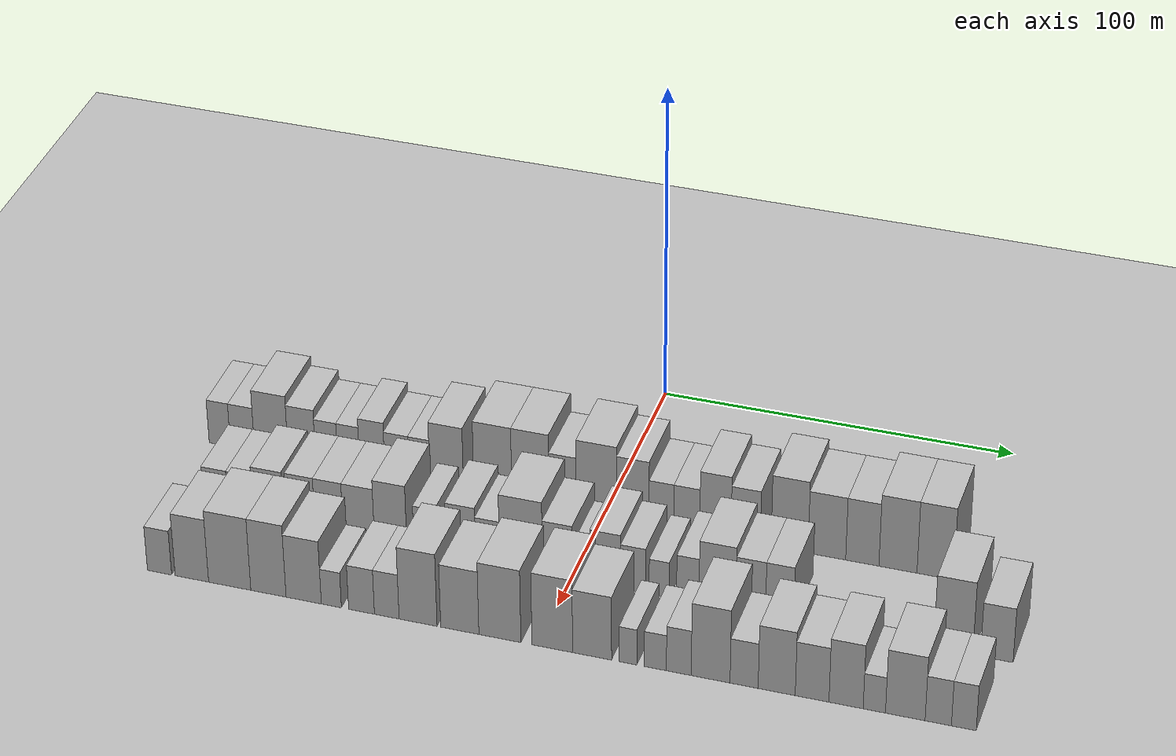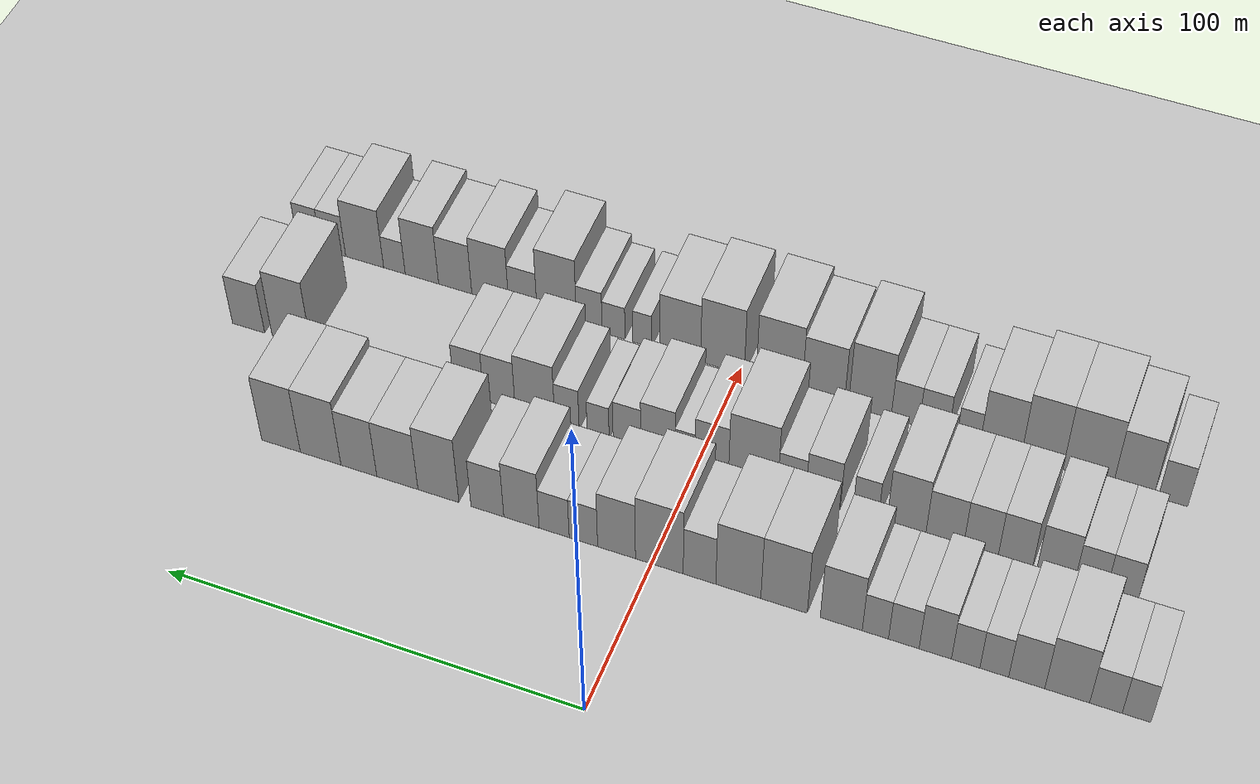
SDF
<sdf version="1.6">
 <world name="default">
  <include><name>ground_plane_1</name><uri>model://HANNAS_ground_plane</uri></include>
  <include>
   <name>ground_plane_2</name>
   <uri>model://HANNAS_ground_plane</uri>
   <pose>100 0 0  0 0 0</pose>
  </include>
  <model name="building_23">
   <static>1</static>
   <pose>50.0000 -111.0377 0 0.000000 0.000000 0.000000</pose>
   <link name="link">
    <pose>0 0 7.50 0 0 0</pose>
    <collision name="collision"><geometry><box><size>20.0000 6.3053 15.0000</size></box></geometry></collision>
    <visual name="visual">
     <cast_shadows>0</cast_shadows>
     <geometry><box><size>20.0000 6.3053 15.0000</size></box></geometry>
     <material>
      <script>
       <uri>model://HANNAS_wall/materials/scripts</uri>
       <uri>model://HANNAS_wall/materials/textures</uri>
       <name>vrc/HANNAS_wall</name>
      </script>
     </material>
    </visual>
   </link>
  </model>
  <model name="building_24">
   <static>1</static>
   <pose>50.0000 -104.3092 0 0.000000 0.000000 0.000000</pose>
   <link name="link">
    <pose>0 0 7.50 0 0 0</pose>
    <collision name="collision"><geometry><box><size>20.0000 7.1516 15.0000</size></box></geometry></collision>
    <visual name="visual">
     <cast_shadows>0</cast_shadows>
     <geometry><box><size>20.0000 7.1516 15.0000</size></box></geometry>
     <material>
      <script>
       <uri>model://HANNAS_wall/materials/scripts</uri>
       <uri>model://HANNAS_wall/materials/textures</uri>
       <name>vrc/HANNAS_wall</name>
      </script>
     </material>
    </visual>
   </link>
  </model>
  <model name="building_25">
   <static>1</static>
   <pose>50.0000 -95.7648 0 0.000000 0.000000 0.000000</pose>
   <link name="link">
    <pose>0 0 10.50 0 0 0</pose>
    <collision name="collision"><geometry><box><size>20.0000 9.9373 21.0000</size></box></geometry></collision>
    <visual name="visual">
     <cast_shadows>0</cast_shadows>
     <geometry><box><size>20.0000 9.9373 21.0000</size></box></geometry>
     <material>
      <script>
       <uri>model://HANNAS_wall/materials/scripts</uri>
       <uri>model://HANNAS_wall/materials/textures</uri>
       <name>vrc/HANNAS_wall</name>
      </script>
     </material>
    </visual>
   </link>
  </model>
  <model name="building_26">
   <static>1</static>
   <pose>50.0000 -86.7665 0 0.000000 0.000000 0.000000</pose>
   <link name="link">
    <pose>0 0 9.00 0 0 0</pose>
    <collision name="collision"><geometry><box><size>20.0000 8.0591 18.0000</size></box></geometry></collision>
    <visual name="visual">
     <cast_shadows>0</cast_shadows>
     <geometry><box><size>20.0000 8.0591 18.0000</size></box></geometry>
     <material>
      <script>
       <uri>model://HANNAS_wall/materials/scripts</uri>
       <uri>model://HANNAS_wall/materials/textures</uri>
       <name>vrc/HANNAS_wall</name>
      </script>
     </material>
    </visual>
   </link>
  </model>
  <model name="building_27">
   <static>1</static>
   <pose>50.0000 -79.5064 0 0.000000 0.000000 0.000000</pose>
   <link name="link">
    <pose>0 0 7.50 0 0 0</pose>
    <collision name="collision"><geometry><box><size>20.0000 6.4612 15.0000</size></box></geometry></collision>
    <visual name="visual">
     <cast_shadows>0</cast_shadows>
     <geometry><box><size>20.0000 6.4612 15.0000</size></box></geometry>
     <material>
      <script>
       <uri>model://HANNAS_wall/materials/scripts</uri>
       <uri>model://HANNAS_wall/materials/textures</uri>
       <name>vrc/HANNAS_wall</name>
      </script>
     </material>
    </visual>
   </link>
  </model>
  <model name="building_28">
   <static>1</static>
   <pose>50.0000 -73.0617 0 0.000000 0.000000 0.000000</pose>
   <link name="link">
    <pose>0 0 7.50 0 0 0</pose>
    <collision name="collision"><geometry><box><size>20.0000 6.4282 15.0000</size></box></geometry></collision>
    <visual name="visual">
     <cast_shadows>0</cast_shadows>
     <geometry><box><size>20.0000 6.4282 15.0000</size></box></geometry>
     <material>
      <script>
       <uri>model://HANNAS_wall/materials/scripts</uri>
       <uri>model://HANNAS_wall/materials/textures</uri>
       <name>vrc/HANNAS_wall</name>
      </script>
     </material>
    </visual>
   </link>
  </model>
  <model name="building_29">
   <static>1</static>
   <pose>50.0000 -66.1750 0 0.000000 0.000000 0.000000</pose>
   <link name="link">
    <pose>0 0 9.00 0 0 0</pose>
    <collision name="collision"><geometry><box><size>20.0000 7.3453 18.0000</size></box></geometry></collision>
    <visual name="visual">
     <cast_shadows>0</cast_shadows>
     <geometry><box><size>20.0000 7.3453 18.0000</size></box></geometry>
     <material>
      <script>
       <uri>model://HANNAS_wall/materials/scripts</uri>
       <uri>model://HANNAS_wall/materials/textures</uri>
       <name>vrc/HANNAS_wall</name>
      </script>
     </material>
    </visual>
   </link>
  </model>
  <model name="building_30">
   <static>1</static>
   <pose>50.0000 -59.0148 0 0.000000 0.000000 0.000000</pose>
   <link name="link">
    <pose>0 0 7.50 0 0 0</pose>
    <collision name="collision"><geometry><box><size>20.0000 6.9750 15.0000</size></box></geometry></collision>
    <visual name="visual">
     <cast_shadows>0</cast_shadows>
     <geometry><box><size>20.0000 6.9750 15.0000</size></box></geometry>
     <material>
      <script>
       <uri>model://HANNAS_wall/materials/scripts</uri>
       <uri>model://HANNAS_wall/materials/textures</uri>
       <name>vrc/HANNAS_wall</name>
      </script>
     </material>
    </visual>
   </link>
  </model>
  <model name="building_31">
   <static>1</static>
   <pose>50.0000 -52.5068 0 0.000000 0.000000 0.000000</pose>
   <link name="link">
    <pose>0 0 7.50 0 0 0</pose>
    <collision name="collision"><geometry><box><size>20.0000 6.0411 15.0000</size></box></geometry></collision>
    <visual name="visual">
     <cast_shadows>0</cast_shadows>
     <geometry><box><size>20.0000 6.0411 15.0000</size></box></geometry>
     <material>
      <script>
       <uri>model://HANNAS_wall/materials/scripts</uri>
       <uri>model://HANNAS_wall/materials/textures</uri>
       <name>vrc/HANNAS_wall</name>
      </script>
     </material>
    </visual>
   </link>
  </model>
  <model name="building_32">
   <static>1</static>
   <pose>50.0000 -44.6424 0 0.000000 0.000000 0.000000</pose>
   <link name="link">
    <pose>0 0 10.50 0 0 0</pose>
    <collision name="collision"><geometry><box><size>20.0000 9.6876 21.0000</size></box></geometry></collision>
    <visual name="visual">
     <cast_shadows>0</cast_shadows>
     <geometry><box><size>20.0000 9.6876 21.0000</size></box></geometry>
     <material>
      <script>
       <uri>model://HANNAS_wall/materials/scripts</uri>
       <uri>model://HANNAS_wall/materials/textures</uri>
       <name>vrc/HANNAS_wall</name>
      </script>
     </material>
    </visual>
   </link>
  </model>
  <model name="building_33">
   <static>1</static>
   <pose>50.0000 -31.3701 0 0.000000 0.000000 0.000000</pose>
   <link name="link">
    <pose>0 0 12.00 0 0 0</pose>
    <collision name="collision"><geometry><box><size>20.0000 10.8570 24.0000</size></box></geometry></collision>
    <visual name="visual">
     <cast_shadows>0</cast_shadows>
     <geometry><box><size>20.0000 10.8570 24.0000</size></box></geometry>
     <material>
      <script>
       <uri>model://HANNAS_wall/materials/scripts</uri>
       <uri>model://HANNAS_wall/materials/textures</uri>
       <name>vrc/HANNAS_wall</name>
      </script>
     </material>
    </visual>
   </link>
  </model>
  <model name="building_34">
   <static>1</static>
   <pose>50.0000 -20.6440 0 0.000000 0.000000 0.000000</pose>
   <link name="link">
    <pose>0 0 12.00 0 0 0</pose>
    <collision name="collision"><geometry><box><size>20.0000 10.5951 24.0000</size></box></geometry></collision>
    <visual name="visual">
     <cast_shadows>0</cast_shadows>
     <geometry><box><size>20.0000 10.5951 24.0000</size></box></geometry>
     <material>
      <script>
       <uri>model://HANNAS_wall/materials/scripts</uri>
       <uri>model://HANNAS_wall/materials/textures</uri>
       <name>vrc/HANNAS_wall</name>
      </script>
     </material>
    </visual>
   </link>
  </model>
  <model name="building_35">
   <static>1</static>
   <pose>50.0000 -11.4797 0 0.000000 0.000000 0.000000</pose>
   <link name="link">
    <pose>0 0 9.00 0 0 0</pose>
    <collision name="collision"><geometry><box><size>20.0000 7.7335 18.0000</size></box></geometry></collision>
    <visual name="visual">
     <cast_shadows>0</cast_shadows>
     <geometry><box><size>20.0000 7.7335 18.0000</size></box></geometry>
     <material>
      <script>
       <uri>model://HANNAS_wall/materials/scripts</uri>
       <uri>model://HANNAS_wall/materials/textures</uri>
       <name>vrc/HANNAS_wall</name>
      </script>
     </material>
    </visual>
   </link>
  </model>
  <model name="building_36">
   <static>1</static>
   <pose>50.0000 -1.9124 0 0.000000 0.000000 0.000000</pose>
   <link name="link">
    <pose>0 0 12.00 0 0 0</pose>
    <collision name="collision"><geometry><box><size>20.0000 11.4013 24.0000</size></box></geometry></collision>
    <visual name="visual">
     <cast_shadows>0</cast_shadows>
     <geometry><box><size>20.0000 11.4013 24.0000</size></box></geometry>
     <material>
      <script>
       <uri>model://HANNAS_wall/materials/scripts</uri>
       <uri>model://HANNAS_wall/materials/textures</uri>
       <name>vrc/HANNAS_wall</name>
      </script>
     </material>
    </visual>
   </link>
  </model>
  <model name="building_37">
   <static>1</static>
   <pose>50.0000 8.3407 0 0.000000 0.000000 0.000000</pose>
   <link name="link">
    <pose>0 0 10.50 0 0 0</pose>
    <collision name="collision"><geometry><box><size>20.0000 9.1049 21.0000</size></box></geometry></collision>
    <visual name="visual">
     <cast_shadows>0</cast_shadows>
     <geometry><box><size>20.0000 9.1049 21.0000</size></box></geometry>
     <material>
      <script>
       <uri>model://HANNAS_wall/materials/scripts</uri>
       <uri>model://HANNAS_wall/materials/textures</uri>
       <name>vrc/HANNAS_wall</name>
      </script>
     </material>
    </visual>
   </link>
  </model>
  <model name="building_38">
   <static>1</static>
   <pose>50.0000 16.3388 0 0.000000 0.000000 0.000000</pose>
   <link name="link">
    <pose>0 0 7.50 0 0 0</pose>
    <collision name="collision"><geometry><box><size>20.0000 6.8914 15.0000</size></box></geometry></collision>
    <visual name="visual">
     <cast_shadows>0</cast_shadows>
     <geometry><box><size>20.0000 6.8914 15.0000</size></box></geometry>
     <material>
      <script>
       <uri>model://HANNAS_wall/materials/scripts</uri>
       <uri>model://HANNAS_wall/materials/textures</uri>
       <name>vrc/HANNAS_wall</name>
      </script>
     </material>
    </visual>
   </link>
  </model>
  <model name="building_39">
   <static>1</static>
   <pose>50.0000 23.4377 0 0.000000 0.000000 0.000000</pose>
   <link name="link">
    <pose>0 0 7.50 0 0 0</pose>
    <collision name="collision"><geometry><box><size>20.0000 7.3063 15.0000</size></box></geometry></collision>
    <visual name="visual">
     <cast_shadows>0</cast_shadows>
     <geometry><box><size>20.0000 7.3063 15.0000</size></box></geometry>
     <material>
      <script>
       <uri>model://HANNAS_wall/materials/scripts</uri>
       <uri>model://HANNAS_wall/materials/textures</uri>
       <name>vrc/HANNAS_wall</name>
      </script>
     </material>
    </visual>
   </link>
  </model>
  <model name="building_40">
   <static>1</static>
   <pose>50.0000 31.4318 0 0.000000 0.000000 0.000000</pose>
   <link name="link">
    <pose>0 0 10.50 0 0 0</pose>
    <collision name="collision"><geometry><box><size>20.0000 8.6821 21.0000</size></box></geometry></collision>
    <visual name="visual">
     <cast_shadows>0</cast_shadows>
     <geometry><box><size>20.0000 8.6821 21.0000</size></box></geometry>
     <material>
      <script>
       <uri>model://HANNAS_wall/materials/scripts</uri>
       <uri>model://HANNAS_wall/materials/textures</uri>
       <name>vrc/HANNAS_wall</name>
      </script>
     </material>
    </visual>
   </link>
  </model>
  <model name="building_41">
   <static>1</static>
   <pose>50.0000 39.8269 0 0.000000 0.000000 0.000000</pose>
   <link name="link">
    <pose>0 0 9.00 0 0 0</pose>
    <collision name="collision"><geometry><box><size>20.0000 8.1081 18.0000</size></box></geometry></collision>
    <visual name="visual">
     <cast_shadows>0</cast_shadows>
     <geometry><box><size>20.0000 8.1081 18.0000</size></box></geometry>
     <material>
      <script>
       <uri>model://HANNAS_wall/materials/scripts</uri>
       <uri>model://HANNAS_wall/materials/textures</uri>
       <name>vrc/HANNAS_wall</name>
      </script>
     </material>
    </visual>
   </link>
  </model>
  <model name="building_42">
   <static>1</static>
   <pose>50.0000 51.9822 0 0.000000 0.000000 0.000000</pose>
   <link name="link">
    <pose>0 0 12.00 0 0 0</pose>
    <collision name="collision"><geometry><box><size>20.0000 10.2024 24.0000</size></box></geometry></collision>
    <visual name="visual">
     <cast_shadows>0</cast_shadows>
     <geometry><box><size>20.0000 10.2024 24.0000</size></box></geometry>
     <material>
      <script>
       <uri>model://HANNAS_wall/materials/scripts</uri>
       <uri>model://HANNAS_wall/materials/textures</uri>
       <name>vrc/HANNAS_wall</name>
      </script>
     </material>
    </visual>
   </link>
  </model>
  <model name="building_43">
   <static>1</static>
   <pose>50.0000 62.2492 0 0.000000 0.000000 0.000000</pose>
   <link name="link">
    <pose>0 0 10.50 0 0 0</pose>
    <collision name="collision"><geometry><box><size>20.0000 10.3316 21.0000</size></box></geometry></collision>
    <visual name="visual">
     <cast_shadows>0</cast_shadows>
     <geometry><box><size>20.0000 10.3316 21.0000</size></box></geometry>
     <material>
      <script>
       <uri>model://HANNAS_wall/materials/scripts</uri>
       <uri>model://HANNAS_wall/materials/textures</uri>
       <name>vrc/HANNAS_wall</name>
      </script>
     </material>
    </visual>
   </link>
  </model>
  <model name="building_44">
   <static>1</static>
   <pose>50.0000 71.9521 0 0.000000 0.000000 0.000000</pose>
   <link name="link">
    <pose>0 0 10.50 0 0 0</pose>
    <collision name="collision"><geometry><box><size>20.0000 9.0741 21.0000</size></box></geometry></collision>
    <visual name="visual">
     <cast_shadows>0</cast_shadows>
     <geometry><box><size>20.0000 9.0741 21.0000</size></box></geometry>
     <material>
      <script>
       <uri>model://HANNAS_wall/materials/scripts</uri>
       <uri>model://HANNAS_wall/materials/textures</uri>
       <name>vrc/HANNAS_wall</name>
      </script>
     </material>
    </visual>
   </link>
  </model>
  <model name="building_45">
   <static>1</static>
   <pose>50.0000 81.6699 0 0.000000 0.000000 0.000000</pose>
   <link name="link">
    <pose>0 0 12.00 0 0 0</pose>
    <collision name="collision"><geometry><box><size>20.0000 10.3615 24.0000</size></box></geometry></collision>
    <visual name="visual">
     <cast_shadows>0</cast_shadows>
     <geometry><box><size>20.0000 10.3615 24.0000</size></box></geometry>
     <material>
      <script>
       <uri>model://HANNAS_wall/materials/scripts</uri>
       <uri>model://HANNAS_wall/materials/textures</uri>
       <name>vrc/HANNAS_wall</name>
      </script>
     </material>
    </visual>
   </link>
  </model>
  <model name="building_46">
   <static>1</static>
   <pose>50.0000 91.8081 0 0.000000 0.000000 0.000000</pose>
   <link name="link">
    <pose>0 0 12.00 0 0 0</pose>
    <collision name="collision"><geometry><box><size>20.0000 9.9149 24.0000</size></box></geometry></collision>
    <visual name="visual">
     <cast_shadows>0</cast_shadows>
     <geometry><box><size>20.0000 9.9149 24.0000</size></box></geometry>
     <material>
      <script>
       <uri>model://HANNAS_wall/materials/scripts</uri>
       <uri>model://HANNAS_wall/materials/textures</uri>
       <name>vrc/HANNAS_wall</name>
      </script>
     </material>
    </visual>
   </link>
  </model>
  <model name="building_96">
   <static>1</static>
   <pose>79.0000 -100.4707 0 0.000000 0.000000 0.000000</pose>
   <link name="link">
    <pose>0 0 7.50 0 0 0</pose>
    <collision name="collision"><geometry><box><size>20.0000 7.1314 15.0000</size></box></geometry></collision>
    <visual name="visual">
     <cast_shadows>0</cast_shadows>
     <geometry><box><size>20.0000 7.1314 15.0000</size></box></geometry>
     <material>
      <script>
       <uri>model://HANNAS_wall/materials/scripts</uri>
       <uri>model://HANNAS_wall/materials/textures</uri>
       <name>vrc/HANNAS_wall</name>
      </script>
     </material>
    </visual>
   </link>
  </model>
  <model name="building_97">
   <static>1</static>
   <pose>79.0000 -93.3090 0 0.000000 0.000000 0.000000</pose>
   <link name="link">
    <pose>0 0 7.50 0 0 0</pose>
    <collision name="collision"><geometry><box><size>20.0000 7.1920 15.0000</size></box></geometry></collision>
    <visual name="visual">
     <cast_shadows>0</cast_shadows>
     <geometry><box><size>20.0000 7.1920 15.0000</size></box></geometry>
     <material>
      <script>
       <uri>model://HANNAS_wall/materials/scripts</uri>
       <uri>model://HANNAS_wall/materials/textures</uri>
       <name>vrc/HANNAS_wall</name>
      </script>
     </material>
    </visual>
   </link>
  </model>
  <model name="building_98">
   <static>1</static>
   <pose>79.0000 -85.3346 0 0.000000 0.000000 0.000000</pose>
   <link name="link">
    <pose>0 0 9.00 0 0 0</pose>
    <collision name="collision"><geometry><box><size>20.0000 8.7568 18.0000</size></box></geometry></collision>
    <visual name="visual">
     <cast_shadows>0</cast_shadows>
     <geometry><box><size>20.0000 8.7568 18.0000</size></box></geometry>
     <material>
      <script>
       <uri>model://HANNAS_wall/materials/scripts</uri>
       <uri>model://HANNAS_wall/materials/textures</uri>
       <name>vrc/HANNAS_wall</name>
      </script>
     </material>
    </visual>
   </link>
  </model>
  <model name="building_99">
   <static>1</static>
   <pose>79.0000 -75.9559 0 0.000000 0.000000 0.000000</pose>
   <link name="link">
    <pose>0 0 9.00 0 0 0</pose>
    <collision name="collision"><geometry><box><size>20.0000 8.0005 18.0000</size></box></geometry></collision>
    <visual name="visual">
     <cast_shadows>0</cast_shadows>
     <geometry><box><size>20.0000 8.0005 18.0000</size></box></geometry>
     <material>
      <script>
       <uri>model://HANNAS_wall/materials/scripts</uri>
       <uri>model://HANNAS_wall/materials/textures</uri>
       <name>vrc/HANNAS_wall</name>
      </script>
     </material>
    </visual>
   </link>
  </model>
  <model name="building_100">
   <static>1</static>
   <pose>79.0000 -67.9354 0 0.000000 0.000000 0.000000</pose>
   <link name="link">
    <pose>0 0 9.00 0 0 0</pose>
    <collision name="collision"><geometry><box><size>20.0000 8.0405 18.0000</size></box></geometry></collision>
    <visual name="visual">
     <cast_shadows>0</cast_shadows>
     <geometry><box><size>20.0000 8.0405 18.0000</size></box></geometry>
     <material>
      <script>
       <uri>model://HANNAS_wall/materials/scripts</uri>
       <uri>model://HANNAS_wall/materials/textures</uri>
       <name>vrc/HANNAS_wall</name>
      </script>
     </material>
    </visual>
   </link>
  </model>
  <model name="building_101">
   <static>1</static>
   <pose>79.0000 -59.4832 0 0.000000 0.000000 0.000000</pose>
   <link name="link">
    <pose>0 0 9.00 0 0 0</pose>
    <collision name="collision"><geometry><box><size>20.0000 8.8640 18.0000</size></box></geometry></collision>
    <visual name="visual">
     <cast_shadows>0</cast_shadows>
     <geometry><box><size>20.0000 8.8640 18.0000</size></box></geometry>
     <material>
      <script>
       <uri>model://HANNAS_wall/materials/scripts</uri>
       <uri>model://HANNAS_wall/materials/textures</uri>
       <name>vrc/HANNAS_wall</name>
      </script>
     </material>
    </visual>
   </link>
  </model>
  <model name="building_102">
   <static>1</static>
   <pose>79.0000 -50.4524 0 0.000000 0.000000 0.000000</pose>
   <link name="link">
    <pose>0 0 10.50 0 0 0</pose>
    <collision name="collision"><geometry><box><size>20.0000 9.1976 21.0000</size></box></geometry></collision>
    <visual name="visual">
     <cast_shadows>0</cast_shadows>
     <geometry><box><size>20.0000 9.1976 21.0000</size></box></geometry>
     <material>
      <script>
       <uri>model://HANNAS_wall/materials/scripts</uri>
       <uri>model://HANNAS_wall/materials/textures</uri>
       <name>vrc/HANNAS_wall</name>
      </script>
     </material>
    </visual>
   </link>
  </model>
  <model name="building_103">
   <static>1</static>
   <pose>79.0000 -40.8290 0 0.000000 0.000000 0.000000</pose>
   <link name="link">
    <pose>0 0 7.50 0 0 0</pose>
    <collision name="collision"><geometry><box><size>20.0000 6.0492 15.0000</size></box></geometry></collision>
    <visual name="visual">
     <cast_shadows>0</cast_shadows>
     <geometry><box><size>20.0000 6.0492 15.0000</size></box></geometry>
     <material>
      <script>
       <uri>model://HANNAS_wall/materials/scripts</uri>
       <uri>model://HANNAS_wall/materials/textures</uri>
       <name>vrc/HANNAS_wall</name>
      </script>
     </material>
    </visual>
   </link>
  </model>
  <model name="building_104">
   <static>1</static>
   <pose>79.0000 -30.6722 0 0.000000 0.000000 0.000000</pose>
   <link name="link">
    <pose>0 0 9.00 0 0 0</pose>
    <collision name="collision"><geometry><box><size>20.0000 8.2644 18.0000</size></box></geometry></collision>
    <visual name="visual">
     <cast_shadows>0</cast_shadows>
     <geometry><box><size>20.0000 8.2644 18.0000</size></box></geometry>
     <material>
      <script>
       <uri>model://HANNAS_wall/materials/scripts</uri>
       <uri>model://HANNAS_wall/materials/textures</uri>
       <name>vrc/HANNAS_wall</name>
      </script>
     </material>
    </visual>
   </link>
  </model>
  <model name="building_105">
   <static>1</static>
   <pose>79.0000 -23.1634 0 0.000000 0.000000 0.000000</pose>
   <link name="link">
    <pose>0 0 7.50 0 0 0</pose>
    <collision name="collision"><geometry><box><size>20.0000 6.7531 15.0000</size></box></geometry></collision>
    <visual name="visual">
     <cast_shadows>0</cast_shadows>
     <geometry><box><size>20.0000 6.7531 15.0000</size></box></geometry>
     <material>
      <script>
       <uri>model://HANNAS_wall/materials/scripts</uri>
       <uri>model://HANNAS_wall/materials/textures</uri>
       <name>vrc/HANNAS_wall</name>
      </script>
     </material>
    </visual>
   </link>
  </model>
  <model name="building_106">
   <static>1</static>
   <pose>79.0000 -13.8226 0 0.000000 0.000000 0.000000</pose>
   <link name="link">
    <pose>0 0 12.00 0 0 0</pose>
    <collision name="collision"><geometry><box><size>20.0000 11.9286 24.0000</size></box></geometry></collision>
    <visual name="visual">
     <cast_shadows>0</cast_shadows>
     <geometry><box><size>20.0000 11.9286 24.0000</size></box></geometry>
     <material>
      <script>
       <uri>model://HANNAS_wall/materials/scripts</uri>
       <uri>model://HANNAS_wall/materials/textures</uri>
       <name>vrc/HANNAS_wall</name>
      </script>
     </material>
    </visual>
   </link>
  </model>
  <model name="building_107">
   <static>1</static>
   <pose>79.0000 -3.7254 0 0.000000 0.000000 0.000000</pose>
   <link name="link">
    <pose>0 0 9.00 0 0 0</pose>
    <collision name="collision"><geometry><box><size>20.0000 8.2656 18.0000</size></box></geometry></collision>
    <visual name="visual">
     <cast_shadows>0</cast_shadows>
     <geometry><box><size>20.0000 8.2656 18.0000</size></box></geometry>
     <material>
      <script>
       <uri>model://HANNAS_wall/materials/scripts</uri>
       <uri>model://HANNAS_wall/materials/textures</uri>
       <name>vrc/HANNAS_wall</name>
      </script>
     </material>
    </visual>
   </link>
  </model>
  <model name="building_108">
   <static>1</static>
   <pose>79.0000 2.8357 0 0.000000 0.000000 0.000000</pose>
   <link name="link">
    <pose>0 0 6.00 0 0 0</pose>
    <collision name="collision"><geometry><box><size>20.0000 4.8567 12.0000</size></box></geometry></collision>
    <visual name="visual">
     <cast_shadows>0</cast_shadows>
     <geometry><box><size>20.0000 4.8567 12.0000</size></box></geometry>
     <material>
      <script>
       <uri>model://HANNAS_wall/materials/scripts</uri>
       <uri>model://HANNAS_wall/materials/textures</uri>
       <name>vrc/HANNAS_wall</name>
      </script>
     </material>
    </visual>
   </link>
  </model>
  <model name="building_109">
   <static>1</static>
   <pose>79.0000 9.4950 0 0.000000 0.000000 0.000000</pose>
   <link name="link">
    <pose>0 0 9.00 0 0 0</pose>
    <collision name="collision"><geometry><box><size>20.0000 8.4619 18.0000</size></box></geometry></collision>
    <visual name="visual">
     <cast_shadows>0</cast_shadows>
     <geometry><box><size>20.0000 8.4619 18.0000</size></box></geometry>
     <material>
      <script>
       <uri>model://HANNAS_wall/materials/scripts</uri>
       <uri>model://HANNAS_wall/materials/textures</uri>
       <name>vrc/HANNAS_wall</name>
      </script>
     </material>
    </visual>
   </link>
  </model>
  <model name="building_110">
   <static>1</static>
   <pose>79.0000 17.1484 0 0.000000 0.000000 0.000000</pose>
   <link name="link">
    <pose>0 0 7.50 0 0 0</pose>
    <collision name="collision"><geometry><box><size>20.0000 6.8449 15.0000</size></box></geometry></collision>
    <visual name="visual">
     <cast_shadows>0</cast_shadows>
     <geometry><box><size>20.0000 6.8449 15.0000</size></box></geometry>
     <material>
      <script>
       <uri>model://HANNAS_wall/materials/scripts</uri>
       <uri>model://HANNAS_wall/materials/textures</uri>
       <name>vrc/HANNAS_wall</name>
      </script>
     </material>
    </visual>
   </link>
  </model>
  <model name="building_111">
   <static>1</static>
   <pose>79.0000 24.3176 0 0.000000 0.000000 0.000000</pose>
   <link name="link">
    <pose>0 0 6.00 0 0 0</pose>
    <collision name="collision"><geometry><box><size>20.0000 5.4935 12.0000</size></box></geometry></collision>
    <visual name="visual">
     <cast_shadows>0</cast_shadows>
     <geometry><box><size>20.0000 5.4935 12.0000</size></box></geometry>
     <material>
      <script>
       <uri>model://HANNAS_wall/materials/scripts</uri>
       <uri>model://HANNAS_wall/materials/textures</uri>
       <name>vrc/HANNAS_wall</name>
      </script>
     </material>
    </visual>
   </link>
  </model>
  <model name="building_112">
   <static>1</static>
   <pose>79.0000 32.1249 0 0.000000 0.000000 0.000000</pose>
   <link name="link">
    <pose>0 0 7.50 0 0 0</pose>
    <collision name="collision"><geometry><box><size>20.0000 6.1211 15.0000</size></box></geometry></collision>
    <visual name="visual">
     <cast_shadows>0</cast_shadows>
     <geometry><box><size>20.0000 6.1211 15.0000</size></box></geometry>
     <material>
      <script>
       <uri>model://HANNAS_wall/materials/scripts</uri>
       <uri>model://HANNAS_wall/materials/textures</uri>
       <name>vrc/HANNAS_wall</name>
      </script>
     </material>
    </visual>
   </link>
  </model>
  <model name="building_113">
   <static>1</static>
   <pose>79.0000 40.1862 0 0.000000 0.000000 0.000000</pose>
   <link name="link">
    <pose>0 0 10.50 0 0 0</pose>
    <collision name="collision"><geometry><box><size>20.0000 10.0015 21.0000</size></box></geometry></collision>
    <visual name="visual">
     <cast_shadows>0</cast_shadows>
     <geometry><box><size>20.0000 10.0015 21.0000</size></box></geometry>
     <material>
      <script>
       <uri>model://HANNAS_wall/materials/scripts</uri>
       <uri>model://HANNAS_wall/materials/textures</uri>
       <name>vrc/HANNAS_wall</name>
      </script>
     </material>
    </visual>
   </link>
  </model>
  <model name="building_114">
   <static>1</static>
   <pose>79.0000 49.1955 0 0.000000 0.000000 0.000000</pose>
   <link name="link">
    <pose>0 0 9.00 0 0 0</pose>
    <collision name="collision"><geometry><box><size>20.0000 8.0169 18.0000</size></box></geometry></collision>
    <visual name="visual">
     <cast_shadows>0</cast_shadows>
     <geometry><box><size>20.0000 8.0169 18.0000</size></box></geometry>
     <material>
      <script>
       <uri>model://HANNAS_wall/materials/scripts</uri>
       <uri>model://HANNAS_wall/materials/textures</uri>
       <name>vrc/HANNAS_wall</name>
      </script>
     </material>
    </visual>
   </link>
  </model>
  <model name="building_115">
   <static>1</static>
   <pose>79.0000 56.9932 0 0.000000 0.000000 0.000000</pose>
   <link name="link">
    <pose>0 0 9.00 0 0 0</pose>
    <collision name="collision"><geometry><box><size>20.0000 7.5786 18.0000</size></box></geometry></collision>
    <visual name="visual">
     <cast_shadows>0</cast_shadows>
     <geometry><box><size>20.0000 7.5786 18.0000</size></box></geometry>
     <material>
      <script>
       <uri>model://HANNAS_wall/materials/scripts</uri>
       <uri>model://HANNAS_wall/materials/textures</uri>
       <name>vrc/HANNAS_wall</name>
      </script>
     </material>
    </visual>
   </link>
  </model>
  <model name="building_116">
   <static>1</static>
   <pose>79.0000 103.2891 0 0.000000 0.000000 0.000000</pose>
   <link name="link">
    <pose>0 0 12.00 0 0 0</pose>
    <collision name="collision"><geometry><box><size>20.0000 10.3377 24.0000</size></box></geometry></collision>
    <visual name="visual">
     <cast_shadows>0</cast_shadows>
     <geometry><box><size>20.0000 10.3377 24.0000</size></box></geometry>
     <material>
      <script>
       <uri>model://HANNAS_wall/materials/scripts</uri>
       <uri>model://HANNAS_wall/materials/textures</uri>
       <name>vrc/HANNAS_wall</name>
      </script>
     </material>
    </visual>
   </link>
  </model>
  <model name="building_117">
   <static>1</static>
   <pose>79.0000 114.7516 0 0.000000 0.000000 0.000000</pose>
   <link name="link">
    <pose>0 0 9.00 0 0 0</pose>
    <collision name="collision"><geometry><box><size>20.0000 8.5872 18.0000</size></box></geometry></collision>
    <visual name="visual">
     <cast_shadows>0</cast_shadows>
     <geometry><box><size>20.0000 8.5872 18.0000</size></box></geometry>
     <material>
      <script>
       <uri>model://HANNAS_wall/materials/scripts</uri>
       <uri>model://HANNAS_wall/materials/textures</uri>
       <name>vrc/HANNAS_wall</name>
      </script>
     </material>
    </visual>
   </link>
  </model>
  <model name="building_164">
   <static>1</static>
   <pose>108.0000 -104.9555 0 0.000000 0.000000 0.000000</pose>
   <link name="link">
    <pose>0 0 7.50 0 0 0</pose>
    <collision name="collision"><geometry><box><size>20.0000 6.8877 15.0000</size></box></geometry></collision>
    <visual name="visual">
     <cast_shadows>0</cast_shadows>
     <geometry><box><size>20.0000 6.8877 15.0000</size></box></geometry>
     <material>
      <script>
       <uri>model://HANNAS_wall/materials/scripts</uri>
       <uri>model://HANNAS_wall/materials/textures</uri>
       <name>vrc/HANNAS_wall</name>
      </script>
     </material>
    </visual>
   </link>
  </model>
  <model name="building_165">
   <static>1</static>
   <pose>108.0000 -95.7721 0 0.000000 0.000000 0.000000</pose>
   <link name="link">
    <pose>0 0 10.50 0 0 0</pose>
    <collision name="collision"><geometry><box><size>20.0000 9.4792 21.0000</size></box></geometry></collision>
    <visual name="visual">
     <cast_shadows>0</cast_shadows>
     <geometry><box><size>20.0000 9.4792 21.0000</size></box></geometry>
     <material>
      <script>
       <uri>model://HANNAS_wall/materials/scripts</uri>
       <uri>model://HANNAS_wall/materials/textures</uri>
       <name>vrc/HANNAS_wall</name>
      </script>
     </material>
    </visual>
   </link>
  </model>
  <model name="building_166">
   <static>1</static>
   <pose>108.0000 -85.0687 0 0.000000 0.000000 0.000000</pose>
   <link name="link">
    <pose>0 0 12.00 0 0 0</pose>
    <collision name="collision"><geometry><box><size>20.0000 11.9275 24.0000</size></box></geometry></collision>
    <visual name="visual">
     <cast_shadows>0</cast_shadows>
     <geometry><box><size>20.0000 11.9275 24.0000</size></box></geometry>
     <material>
      <script>
       <uri>model://HANNAS_wall/materials/scripts</uri>
       <uri>model://HANNAS_wall/materials/textures</uri>
       <name>vrc/HANNAS_wall</name>
      </script>
     </material>
    </visual>
   </link>
  </model>
  <model name="building_167">
   <static>1</static>
   <pose>108.0000 -74.1536 0 0.000000 0.000000 0.000000</pose>
   <link name="link">
    <pose>0 0 12.00 0 0 0</pose>
    <collision name="collision"><geometry><box><size>20.0000 9.9028 24.0000</size></box></geometry></collision>
    <visual name="visual">
     <cast_shadows>0</cast_shadows>
     <geometry><box><size>20.0000 9.9028 24.0000</size></box></geometry>
     <material>
      <script>
       <uri>model://HANNAS_wall/materials/scripts</uri>
       <uri>model://HANNAS_wall/materials/textures</uri>
       <name>vrc/HANNAS_wall</name>
      </script>
     </material>
    </visual>
   </link>
  </model>
  <model name="building_168">
   <static>1</static>
   <pose>108.0000 -64.2706 0 0.000000 0.000000 0.000000</pose>
   <link name="link">
    <pose>0 0 10.50 0 0 0</pose>
    <collision name="collision"><geometry><box><size>20.0000 9.8631 21.0000</size></box></geometry></collision>
    <visual name="visual">
     <cast_shadows>0</cast_shadows>
     <geometry><box><size>20.0000 9.8631 21.0000</size></box></geometry>
     <material>
      <script>
       <uri>model://HANNAS_wall/materials/scripts</uri>
       <uri>model://HANNAS_wall/materials/textures</uri>
       <name>vrc/HANNAS_wall</name>
      </script>
     </material>
    </visual>
   </link>
  </model>
  <model name="building_169">
   <static>1</static>
   <pose>108.0000 -56.5410 0 0.000000 0.000000 0.000000</pose>
   <link name="link">
    <pose>0 0 6.00 0 0 0</pose>
    <collision name="collision"><geometry><box><size>20.0000 5.5962 12.0000</size></box></geometry></collision>
    <visual name="visual">
     <cast_shadows>0</cast_shadows>
     <geometry><box><size>20.0000 5.5962 12.0000</size></box></geometry>
     <material>
      <script>
       <uri>model://HANNAS_wall/materials/scripts</uri>
       <uri>model://HANNAS_wall/materials/textures</uri>
       <name>vrc/HANNAS_wall</name>
      </script>
     </material>
    </visual>
   </link>
  </model>
  <model name="building_170">
   <static>1</static>
   <pose>108.0000 -48.1608 0 0.000000 0.000000 0.000000</pose>
   <link name="link">
    <pose>0 0 7.50 0 0 0</pose>
    <collision name="collision"><geometry><box><size>20.0000 7.1640 15.0000</size></box></geometry></collision>
    <visual name="visual">
     <cast_shadows>0</cast_shadows>
     <geometry><box><size>20.0000 7.1640 15.0000</size></box></geometry>
     <material>
      <script>
       <uri>model://HANNAS_wall/materials/scripts</uri>
       <uri>model://HANNAS_wall/materials/textures</uri>
       <name>vrc/HANNAS_wall</name>
      </script>
     </material>
    </visual>
   </link>
  </model>
  <model name="building_171">
   <static>1</static>
   <pose>108.0000 -41.1626 0 0.000000 0.000000 0.000000</pose>
   <link name="link">
    <pose>0 0 7.50 0 0 0</pose>
    <collision name="collision"><geometry><box><size>20.0000 6.8325 15.0000</size></box></geometry></collision>
    <visual name="visual">
     <cast_shadows>0</cast_shadows>
     <geometry><box><size>20.0000 6.8325 15.0000</size></box></geometry>
     <material>
      <script>
       <uri>model://HANNAS_wall/materials/scripts</uri>
       <uri>model://HANNAS_wall/materials/textures</uri>
       <name>vrc/HANNAS_wall</name>
      </script>
     </material>
    </visual>
   </link>
  </model>
  <model name="building_172">
   <static>1</static>
   <pose>108.0000 -32.5141 0 0.000000 0.000000 0.000000</pose>
   <link name="link">
    <pose>0 0 12.00 0 0 0</pose>
    <collision name="collision"><geometry><box><size>20.0000 10.4645 24.0000</size></box></geometry></collision>
    <visual name="visual">
     <cast_shadows>0</cast_shadows>
     <geometry><box><size>20.0000 10.4645 24.0000</size></box></geometry>
     <material>
      <script>
       <uri>model://HANNAS_wall/materials/scripts</uri>
       <uri>model://HANNAS_wall/materials/textures</uri>
       <name>vrc/HANNAS_wall</name>
      </script>
     </material>
    </visual>
   </link>
  </model>
  <model name="building_173">
   <static>1</static>
   <pose>108.0000 -21.0524 0 0.000000 0.000000 0.000000</pose>
   <link name="link">
    <pose>0 0 10.50 0 0 0</pose>
    <collision name="collision"><geometry><box><size>20.0000 10.4588 21.0000</size></box></geometry></collision>
    <visual name="visual">
     <cast_shadows>0</cast_shadows>
     <geometry><box><size>20.0000 10.4588 21.0000</size></box></geometry>
     <material>
      <script>
       <uri>model://HANNAS_wall/materials/scripts</uri>
       <uri>model://HANNAS_wall/materials/textures</uri>
       <name>vrc/HANNAS_wall</name>
      </script>
     </material>
    </visual>
   </link>
  </model>
  <model name="building_174">
   <static>1</static>
   <pose>108.0000 -10.0961 0 0.000000 0.000000 0.000000</pose>
   <link name="link">
    <pose>0 0 12.00 0 0 0</pose>
    <collision name="collision"><geometry><box><size>20.0000 11.4538 24.0000</size></box></geometry></collision>
    <visual name="visual">
     <cast_shadows>0</cast_shadows>
     <geometry><box><size>20.0000 11.4538 24.0000</size></box></geometry>
     <material>
      <script>
       <uri>model://HANNAS_wall/materials/scripts</uri>
       <uri>model://HANNAS_wall/materials/textures</uri>
       <name>vrc/HANNAS_wall</name>
      </script>
     </material>
    </visual>
   </link>
  </model>
  <model name="building_175">
   <static>1</static>
   <pose>108.0000 4.1363 0 0.000000 0.000000 0.000000</pose>
   <link name="link">
    <pose>0 0 12.00 0 0 0</pose>
    <collision name="collision"><geometry><box><size>20.0000 11.0111 24.0000</size></box></geometry></collision>
    <visual name="visual">
     <cast_shadows>0</cast_shadows>
     <geometry><box><size>20.0000 11.0111 24.0000</size></box></geometry>
     <material>
      <script>
       <uri>model://HANNAS_wall/materials/scripts</uri>
       <uri>model://HANNAS_wall/materials/textures</uri>
       <name>vrc/HANNAS_wall</name>
      </script>
     </material>
    </visual>
   </link>
  </model>
  <model name="building_176">
   <static>1</static>
   <pose>108.0000 14.8908 0 0.000000 0.000000 0.000000</pose>
   <link name="link">
    <pose>0 0 10.50 0 0 0</pose>
    <collision name="collision"><geometry><box><size>20.0000 10.4977 21.0000</size></box></geometry></collision>
    <visual name="visual">
     <cast_shadows>0</cast_shadows>
     <geometry><box><size>20.0000 10.4977 21.0000</size></box></geometry>
     <material>
      <script>
       <uri>model://HANNAS_wall/materials/scripts</uri>
       <uri>model://HANNAS_wall/materials/textures</uri>
       <name>vrc/HANNAS_wall</name>
      </script>
     </material>
    </visual>
   </link>
  </model>
  <model name="building_177">
   <static>1</static>
   <pose>108.0000 24.5424 0 0.000000 0.000000 0.000000</pose>
   <link name="link">
    <pose>0 0 6.00 0 0 0</pose>
    <collision name="collision"><geometry><box><size>20.0000 4.8056 12.0000</size></box></geometry></collision>
    <visual name="visual">
     <cast_shadows>0</cast_shadows>
     <geometry><box><size>20.0000 4.8056 12.0000</size></box></geometry>
     <material>
      <script>
       <uri>model://HANNAS_wall/materials/scripts</uri>
       <uri>model://HANNAS_wall/materials/textures</uri>
       <name>vrc/HANNAS_wall</name>
      </script>
     </material>
    </visual>
   </link>
  </model>
  <model name="building_178">
   <static>1</static>
   <pose>108.0000 31.8833 0 0.000000 0.000000 0.000000</pose>
   <link name="link">
    <pose>0 0 6.00 0 0 0</pose>
    <collision name="collision"><geometry><box><size>20.0000 5.8761 12.0000</size></box></geometry></collision>
    <visual name="visual">
     <cast_shadows>0</cast_shadows>
     <geometry><box><size>20.0000 5.8761 12.0000</size></box></geometry>
     <material>
      <script>
       <uri>model://HANNAS_wall/materials/scripts</uri>
       <uri>model://HANNAS_wall/materials/textures</uri>
       <name>vrc/HANNAS_wall</name>
      </script>
     </material>
    </visual>
   </link>
  </model>
  <model name="building_179">
   <static>1</static>
   <pose>108.0000 38.1272 0 0.000000 0.000000 0.000000</pose>
   <link name="link">
    <pose>0 0 7.50 0 0 0</pose>
    <collision name="collision"><geometry><box><size>20.0000 6.6117 15.0000</size></box></geometry></collision>
    <visual name="visual">
     <cast_shadows>0</cast_shadows>
     <geometry><box><size>20.0000 6.6117 15.0000</size></box></geometry>
     <material>
      <script>
       <uri>model://HANNAS_wall/materials/scripts</uri>
       <uri>model://HANNAS_wall/materials/textures</uri>
       <name>vrc/HANNAS_wall</name>
      </script>
     </material>
    </visual>
   </link>
  </model>
  <model name="building_180">
   <static>1</static>
   <pose>108.0000 46.5797 0 0.000000 0.000000 0.000000</pose>
   <link name="link">
    <pose>0 0 12.00 0 0 0</pose>
    <collision name="collision"><geometry><box><size>20.0000 10.2933 24.0000</size></box></geometry></collision>
    <visual name="visual">
     <cast_shadows>0</cast_shadows>
     <geometry><box><size>20.0000 10.2933 24.0000</size></box></geometry>
     <material>
      <script>
       <uri>model://HANNAS_wall/materials/scripts</uri>
       <uri>model://HANNAS_wall/materials/textures</uri>
       <name>vrc/HANNAS_wall</name>
      </script>
     </material>
    </visual>
   </link>
  </model>
  <model name="building_181">
   <static>1</static>
   <pose>108.0000 55.4393 0 0.000000 0.000000 0.000000</pose>
   <link name="link">
    <pose>0 0 7.50 0 0 0</pose>
    <collision name="collision"><geometry><box><size>20.0000 7.4259 15.0000</size></box></geometry></collision>
    <visual name="visual">
     <cast_shadows>0</cast_shadows>
     <geometry><box><size>20.0000 7.4259 15.0000</size></box></geometry>
     <material>
      <script>
       <uri>model://HANNAS_wall/materials/scripts</uri>
       <uri>model://HANNAS_wall/materials/textures</uri>
       <name>vrc/HANNAS_wall</name>
      </script>
     </material>
    </visual>
   </link>
  </model>
  <model name="building_182">
   <static>1</static>
   <pose>108.0000 64.0315 0 0.000000 0.000000 0.000000</pose>
   <link name="link">
    <pose>0 0 10.50 0 0 0</pose>
    <collision name="collision"><geometry><box><size>20.0000 9.7584 21.0000</size></box></geometry></collision>
    <visual name="visual">
     <cast_shadows>0</cast_shadows>
     <geometry><box><size>20.0000 9.7584 21.0000</size></box></geometry>
     <material>
      <script>
       <uri>model://HANNAS_wall/materials/scripts</uri>
       <uri>model://HANNAS_wall/materials/textures</uri>
       <name>vrc/HANNAS_wall</name>
      </script>
     </material>
    </visual>
   </link>
  </model>
  <model name="building_183">
   <static>1</static>
   <pose>108.0000 73.3251 0 0.000000 0.000000 0.000000</pose>
   <link name="link">
    <pose>0 0 9.00 0 0 0</pose>
    <collision name="collision"><geometry><box><size>20.0000 8.8288 18.0000</size></box></geometry></collision>
    <visual name="visual">
     <cast_shadows>0</cast_shadows>
     <geometry><box><size>20.0000 8.8288 18.0000</size></box></geometry>
     <material>
      <script>
       <uri>model://HANNAS_wall/materials/scripts</uri>
       <uri>model://HANNAS_wall/materials/textures</uri>
       <name>vrc/HANNAS_wall</name>
      </script>
     </material>
    </visual>
   </link>
  </model>
  <model name="building_184">
   <static>1</static>
   <pose>108.0000 82.2029 0 0.000000 0.000000 0.000000</pose>
   <link name="link">
    <pose>0 0 10.50 0 0 0</pose>
    <collision name="collision"><geometry><box><size>20.0000 8.9268 21.0000</size></box></geometry></collision>
    <visual name="visual">
     <cast_shadows>0</cast_shadows>
     <geometry><box><size>20.0000 8.9268 21.0000</size></box></geometry>
     <material>
      <script>
       <uri>model://HANNAS_wall/materials/scripts</uri>
       <uri>model://HANNAS_wall/materials/textures</uri>
       <name>vrc/HANNAS_wall</name>
      </script>
     </material>
    </visual>
   </link>
  </model>
  <model name="building_185">
   <static>1</static>
   <pose>108.0000 89.5634 0 0.000000 0.000000 0.000000</pose>
   <link name="link">
    <pose>0 0 6.00 0 0 0</pose>
    <collision name="collision"><geometry><box><size>20.0000 5.7941 12.0000</size></box></geometry></collision>
    <visual name="visual">
     <cast_shadows>0</cast_shadows>
     <geometry><box><size>20.0000 5.7941 12.0000</size></box></geometry>
     <material>
      <script>
       <uri>model://HANNAS_wall/materials/scripts</uri>
       <uri>model://HANNAS_wall/materials/textures</uri>
       <name>vrc/HANNAS_wall</name>
      </script>
     </material>
    </visual>
   </link>
  </model>
  <model name="building_186">
   <static>1</static>
   <pose>108.0000 97.5894 0 0.000000 0.000000 0.000000</pose>
   <link name="link">
    <pose>0 0 10.50 0 0 0</pose>
    <collision name="collision"><geometry><box><size>20.0000 10.2579 21.0000</size></box></geometry></collision>
    <visual name="visual">
     <cast_shadows>0</cast_shadows>
     <geometry><box><size>20.0000 10.2579 21.0000</size></box></geometry>
     <material>
      <script>
       <uri>model://HANNAS_wall/materials/scripts</uri>
       <uri>model://HANNAS_wall/materials/textures</uri>
       <name>vrc/HANNAS_wall</name>
      </script>
     </material>
    </visual>
   </link>
  </model>
  <model name="building_187">
   <static>1</static>
   <pose>108.0000 106.1118 0 0.000000 0.000000 0.000000</pose>
   <link name="link">
    <pose>0 0 7.50 0 0 0</pose>
    <collision name="collision"><geometry><box><size>20.0000 6.7870 15.0000</size></box></geometry></collision>
    <visual name="visual">
     <cast_shadows>0</cast_shadows>
     <geometry><box><size>20.0000 6.7870 15.0000</size></box></geometry>
     <material>
      <script>
       <uri>model://HANNAS_wall/materials/scripts</uri>
       <uri>model://HANNAS_wall/materials/textures</uri>
       <name>vrc/HANNAS_wall</name>
      </script>
     </material>
    </visual>
   </link>
  </model>
  <model name="building_188">
   <static>1</static>
   <pose>108.0000 112.6980 0 0.000000 0.000000 0.000000</pose>
   <link name="link">
    <pose>0 0 7.50 0 0 0</pose>
    <collision name="collision"><geometry><box><size>20.0000 6.3854 15.0000</size></box></geometry></collision>
    <visual name="visual">
     <cast_shadows>0</cast_shadows>
     <geometry><box><size>20.0000 6.3854 15.0000</size></box></geometry>
     <material>
      <script>
       <uri>model://HANNAS_wall/materials/scripts</uri>
       <uri>model://HANNAS_wall/materials/textures</uri>
       <name>vrc/HANNAS_wall</name>
      </script>
     </material>
    </visual>
   </link>
  </model>
 </world>
</sdf>
